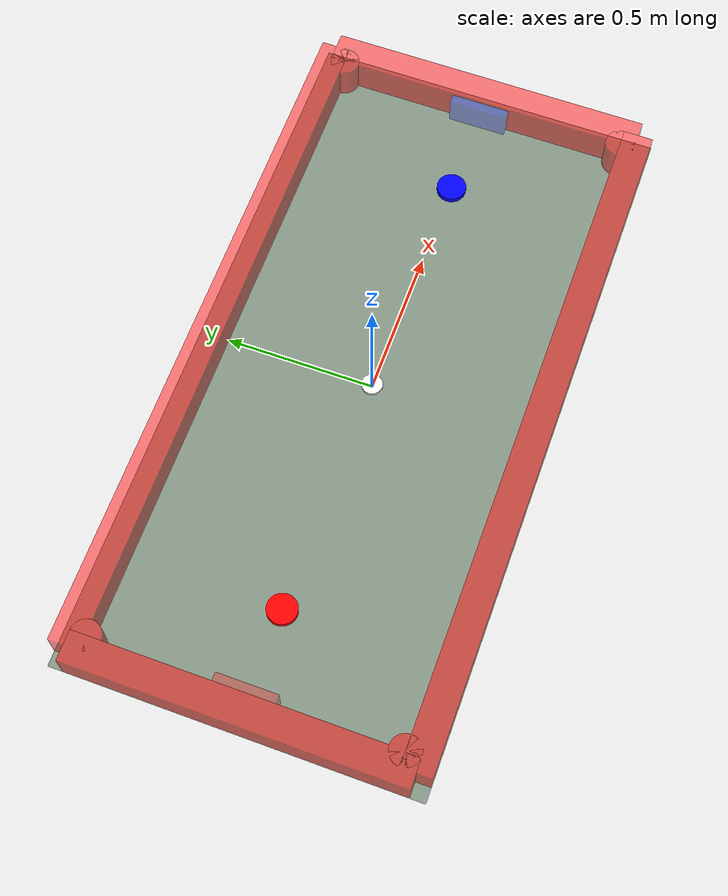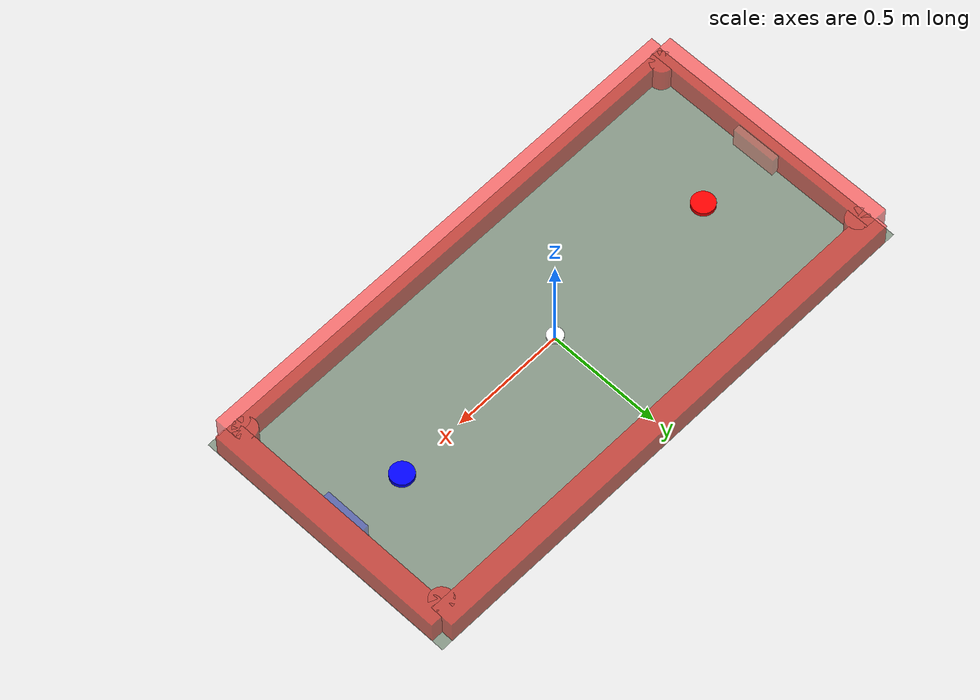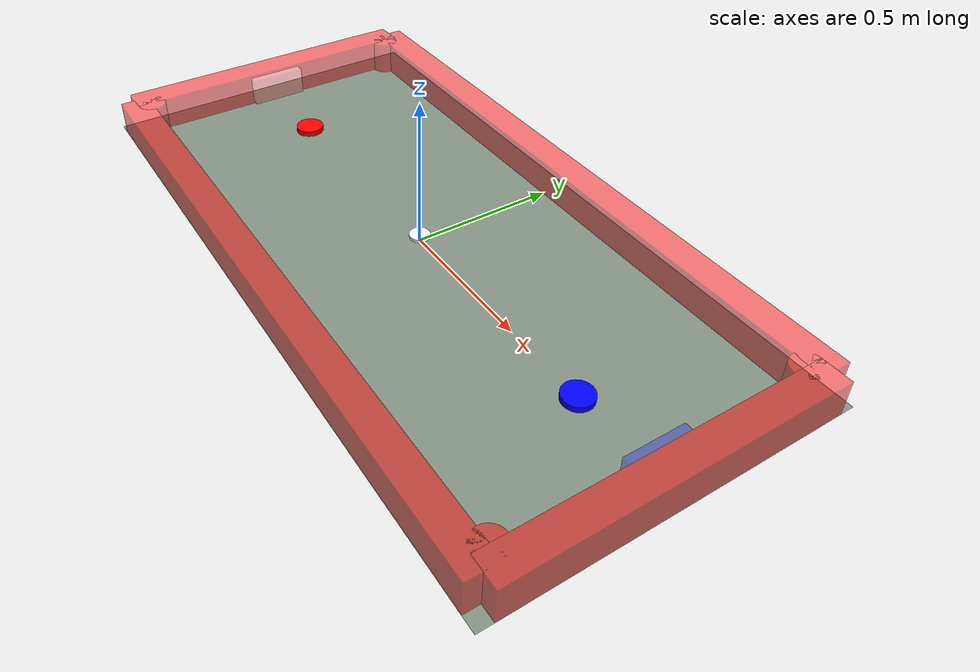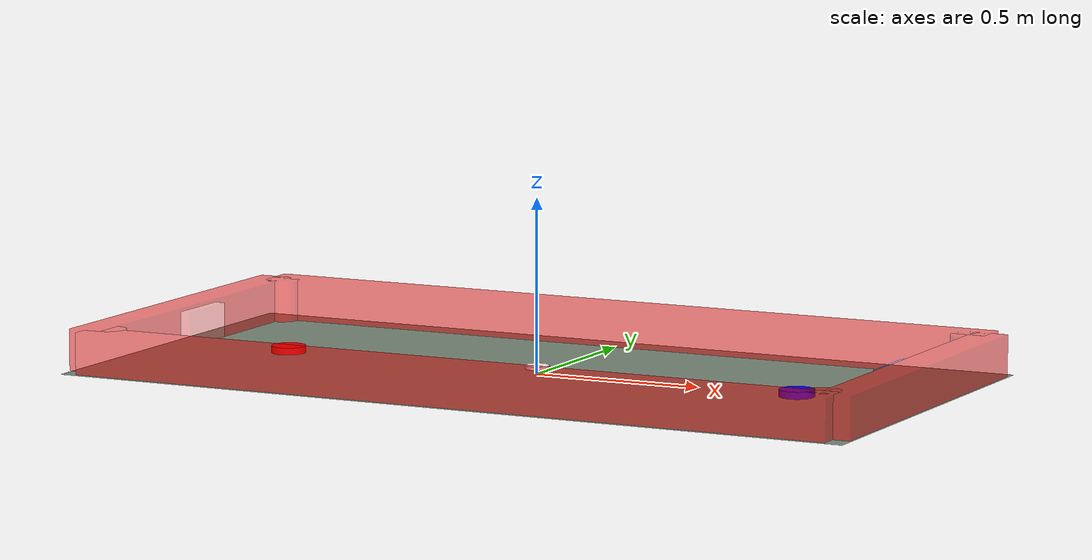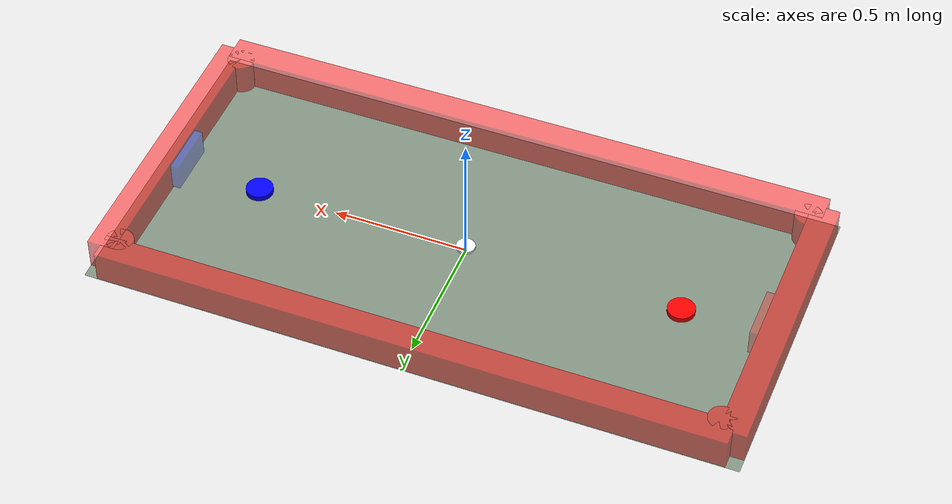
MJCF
<mujoco model="air_hockey">
    <compiler angle="radian" />
    <option timestep="0.003" gravity="0 0 -9.81" solver="Newton" iterations="150" tolerance="1e-8" viscosity="0.1" />
    <worldbody>
        <!--airhockey table and walls -->
        <geom name="table" type="plane" pos="0 0 0" size="1.2 0.6 0.01" rgba="0.5 0.56 0.5 1" friction="0.4 0.4 0.4" solimp="0.99 0.99 0.002" />

        <!--First attempt at real life dimensions, dimensions: 2.4m x 1.2m -->
        <geom name="wall_left" type="box" pos="-1.15 0 0.06" size="0.05 0.55 0.06" rgba="1 0 0 0.5" friction="0.6 0.6 0" solimp="0.99 0.99 0.001" />
        <geom name="wall_right" type="box" pos="1.15 0 0.06" size="0.05 0.55 0.06" rgba="1 0 0 0.5" friction="0.6 0.6 0" solimp="0.99 0.99 0.001" />
        <geom name="wall_top" type="box" pos="0 0.55 0.06" size="1.15 0.05 0.06" rgba="1 0 0 0.5" friction="0.6 0.6 0" solimp="0.99 0.99 0.001" />
        <geom name="wall_bottom" type="box" pos="0 -0.55 0.06" size="1.15 0.05 0.06" rgba="1 0 0 0.5" friction="0.6 0.6 0" solimp="0.99 0.99 0.001" />

        <!-- the edges of the table -->
        <geom name="corner_topleft" type="cylinder" pos="-1.1 0.5 0.06" size="0.05 0.06" rgba="1 0 0 0.5" friction="0.6 0.6 0" solimp="0.99 0.99 0.001"/>
        <geom name="corner_topright" type="cylinder" pos="1.1 0.5 0.06" size="0.05 0.06" rgba="1 0 0 0.5" friction="0.6 0.6 0" solimp="0.99 0.99 0.001"/>
        <geom name="corner_bottomleft" type="cylinder" pos="-1.1 -0.5 0.06" size="0.05 0.06" rgba="1 0 0 0.5" friction="0.6 0.6 0" solimp="0.99 0.99 0.001"/>
        <geom name="corner_bottomright" type="cylinder" pos="1.1 -0.5 0.06" size="0.05 0.06" rgba="1 0 0 0.5" friction="0.6 0.6 0" solimp="0.99 0.99 0.001"/>

        <!-- Scoring area/goal when puck hits it-->
        <geom name="goal_left" type="box" pos="-1.1 0 0.06" size="0.03 0.1 0.05" rgba="1 0 0 0.3" condim="3" friction="1 1 0" />
        <geom name="goal_right" type="box" pos="1.1 0 0.06" size="0.03 0.1 0.05" rgba="0 0 1 0.3" condim="3" friction="1 1 0" />

        <!--Puck-->
        <body name="puck" pos="0 0 0.02">
            <geom type="cylinder" size="0.035 0.005" mass="0.1" rgba="1 1 1 1" density="0.5" condim="3" friction="0.2 0.2 0.2" solref="0.01 1" solimp="0.2 0.2 0.002" />
            <joint name="puck_joint" type="free" damping="0.1" />
        </body>

        <!--Paddle 1(red)-->
        <body name="paddle1" pos="-0.8 0 0.01">
            <geom type="cylinder" size="0.05 0.01" mass="1" rgba="1 0 0 1" density="0.5" condim="3" friction="0.9 0.9 0.002" solref="0.01 1" solimp="0.98 0.98 0.002" />
            <joint name="paddle1_joint" type="slide" axis="1 0 0" damping="0.2" />
            <joint name="paddle1_joint_y" type="slide" axis="0 1 0" damping="0.2" />
        </body>

        <!-- Paddle 2(blue)-->
        <body name="paddle2" pos="0.8 0 0.01">
            <geom type="cylinder" size="0.05 0.01" mass="1" rgba="0 0 1 1" density="0.5" condim="3" friction="0.9 0.9 0.002" solref="0.01 1" solimp="0.98 0.98 0.002" />
            <joint name="paddle2_joint" type="slide" axis="1 0 0" damping="0.2" />
            <joint name="paddle2_joint_y" type="slide" axis="0 1 0" damping="0.2" />
        </body>
    </worldbody>
    <actuator>
        <motor name="paddle1_actuator_x" joint="paddle1_joint_y" gear="100" />
        <motor name="paddle1_actuator_y" joint="paddle1_joint" gear="100" />
        <motor name="paddle2_actuator_x" joint="paddle2_joint" gear="100" />
        <motor name="paddle2_actuator_y" joint="paddle2_joint_y" gear="100" />
    </actuator>
</mujoco>
